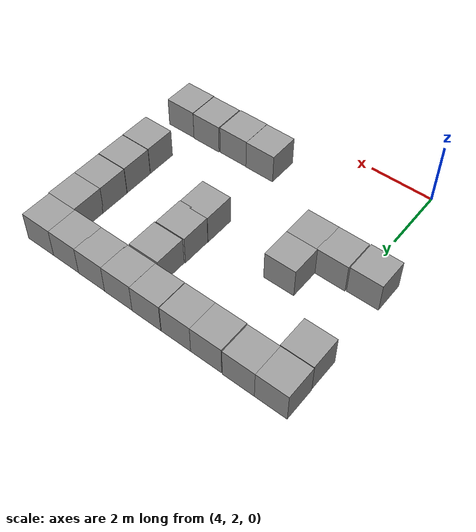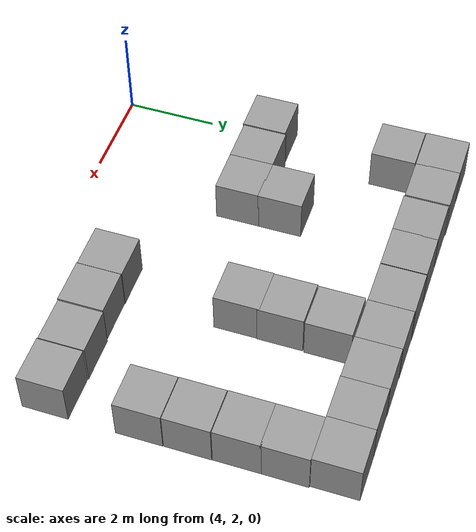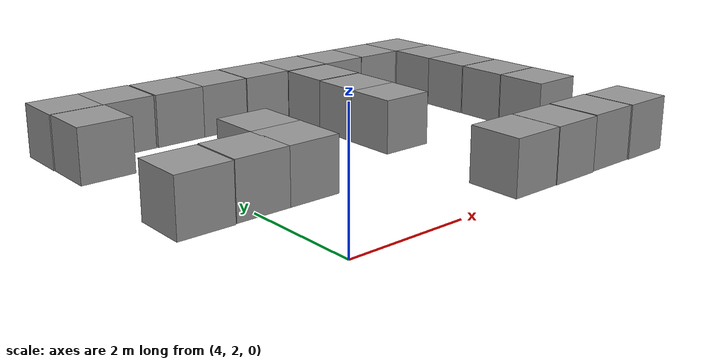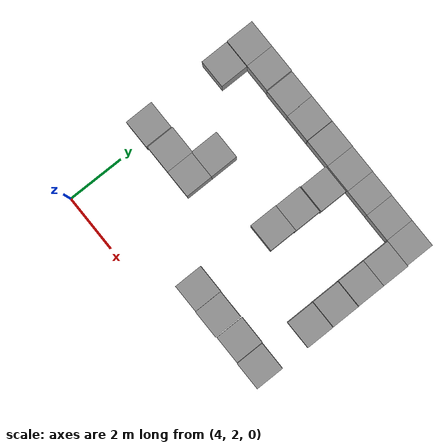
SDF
<sdf version="1.7">
 <model name="maze2.1">
  <link name="link_1">
   <inertial>
    <mass>1</mass>
    <inertia>
     <ixx>0.166667</ixx>
     <ixy>0</ixy>
     <ixz>0</ixz>
     <iyy>0.166667</iyy>
     <iyz>0</iyz>
     <izz>0.166667</izz>
    </inertia>
   </inertial>
   <pose>9.73191 9.35731 0 0 -0 0</pose>
   <visual name="visual">
    <geometry><box><size>1 1 1</size></box></geometry>
    <material>
     <lighting>1</lighting>
     <script><uri>file://media/materials/scripts/gazebo.material</uri><name>Gazebo/Grey</name></script>
     <shader type="pixel"><normal_map>__default__</normal_map></shader>
     <ambient>0.3 0.3 0.3 1</ambient>
     <diffuse>0.7 0.7 0.7 1</diffuse>
     <specular>0.01 0.01 0.01 1</specular>
     <emissive>0 0 0 1</emissive>
    </material>
   </visual>
   <collision name="collision">
    <geometry><box><size>1 1 1</size></box></geometry>
    <surface>
     <friction>
      <ode><mu>1</mu><mu2>1</mu2><fdir1>0 0 0</fdir1><slip1>0</slip1><slip2>0</slip2></ode>
      <torsional>
       <coefficient>1</coefficient>
       <patch_radius>0</patch_radius>
       <surface_radius>0</surface_radius>
       <use_patch_radius>1</use_patch_radius>
       <ode><slip>0</slip></ode>
      </torsional>
     </friction>
     <bounce><restitution_coefficient>0</restitution_coefficient><threshold>1e+06</threshold></bounce>
     <contact>
      <collide_without_contact>0</collide_without_contact>
      <collide_without_contact_bitmask>1</collide_without_contact_bitmask>
      <collide_bitmask>1</collide_bitmask>
      <ode>
       <soft_cfm>0</soft_cfm>
       <soft_erp>0.2</soft_erp>
       <kp>1e+13</kp>
       <kd>1</kd>
       <max_vel>0.01</max_vel>
       <min_depth>0</min_depth>
      </ode>
      <bullet>
       <split_impulse>1</split_impulse>
       <split_impulse_penetration_threshold>-0.01</split_impulse_penetration_threshold>
       <soft_cfm>0</soft_cfm>
       <soft_erp>0.2</soft_erp>
       <kp>1e+13</kp>
       <kd>1</kd>
      </bullet>
     </contact>
    </surface>
   </collision>
  </link>
  <link name="link_0">
   <inertial>
    <mass>1</mass>
    <inertia>
     <ixx>0.166667</ixx>
     <ixy>0</ixy>
     <ixz>0</ixz>
     <iyy>0.166667</iyy>
     <iyz>0</iyz>
     <izz>0.166667</izz>
    </inertia>
   </inertial>
   <pose>10.704 9.35209 0 0 -0 0</pose>
   <visual name="visual">
    <geometry><box><size>1 1 1</size></box></geometry>
    <material>
     <lighting>1</lighting>
     <script><uri>file://media/materials/scripts/gazebo.material</uri><name>Gazebo/Grey</name></script>
     <shader type="pixel"/>
    </material>
   </visual>
   <collision name="collision">
    <geometry><box><size>1 1 1</size></box></geometry>
    <surface>
     <friction>
      <ode><mu>1</mu><mu2>1</mu2><fdir1>0 0 0</fdir1><slip1>0</slip1><slip2>0</slip2></ode>
      <torsional>
       <coefficient>1</coefficient>
       <patch_radius>0</patch_radius>
       <surface_radius>0</surface_radius>
       <use_patch_radius>1</use_patch_radius>
       <ode><slip>0</slip></ode>
      </torsional>
     </friction>
     <bounce><restitution_coefficient>0</restitution_coefficient><threshold>1e+06</threshold></bounce>
     <contact>
      <collide_without_contact>0</collide_without_contact>
      <collide_without_contact_bitmask>1</collide_without_contact_bitmask>
      <collide_bitmask>1</collide_bitmask>
      <ode>
       <soft_cfm>0</soft_cfm>
       <soft_erp>0.2</soft_erp>
       <kp>1e+13</kp>
       <kd>1</kd>
       <max_vel>0.01</max_vel>
       <min_depth>0</min_depth>
      </ode>
      <bullet>
       <split_impulse>1</split_impulse>
       <split_impulse_penetration_threshold>-0.01</split_impulse_penetration_threshold>
       <soft_cfm>0</soft_cfm>
       <soft_erp>0.2</soft_erp>
       <kp>1e+13</kp>
       <kd>1</kd>
      </bullet>
     </contact>
    </surface>
   </collision>
  </link>
  <link name="link_1_0">
   <inertial>
    <mass>1</mass>
    <inertia>
     <ixx>0.166667</ixx>
     <ixy>0</ixy>
     <ixz>0</ixz>
     <iyy>0.166667</iyy>
     <iyz>0</iyz>
     <izz>0.166667</izz>
    </inertia>
   </inertial>
   <pose>11.7027 9.35209 0 0 -0 0</pose>
   <visual name="visual">
    <geometry><box><size>1 1 1</size></box></geometry>
    <material>
     <lighting>1</lighting>
     <script><uri>file://media/materials/scripts/gazebo.material</uri><name>Gazebo/Grey</name></script>
     <shader type="pixel"/>
    </material>
   </visual>
   <collision name="collision">
    <geometry><box><size>1 1 1</size></box></geometry>
    <surface>
     <friction>
      <ode><mu>1</mu><mu2>1</mu2><fdir1>0 0 0</fdir1><slip1>0</slip1><slip2>0</slip2></ode>
      <torsional>
       <coefficient>1</coefficient>
       <patch_radius>0</patch_radius>
       <surface_radius>0</surface_radius>
       <use_patch_radius>1</use_patch_radius>
       <ode><slip>0</slip></ode>
      </torsional>
     </friction>
     <bounce><restitution_coefficient>0</restitution_coefficient><threshold>1e+06</threshold></bounce>
     <contact>
      <collide_without_contact>0</collide_without_contact>
      <collide_without_contact_bitmask>1</collide_without_contact_bitmask>
      <collide_bitmask>1</collide_bitmask>
      <ode>
       <soft_cfm>0</soft_cfm>
       <soft_erp>0.2</soft_erp>
       <kp>1e+13</kp>
       <kd>1</kd>
       <max_vel>0.01</max_vel>
       <min_depth>0</min_depth>
      </ode>
      <bullet>
       <split_impulse>1</split_impulse>
       <split_impulse_penetration_threshold>-0.01</split_impulse_penetration_threshold>
       <soft_cfm>0</soft_cfm>
       <soft_erp>0.2</soft_erp>
       <kp>1e+13</kp>
       <kd>1</kd>
      </bullet>
     </contact>
    </surface>
   </collision>
  </link>
  <link name="link_1_clone">
   <inertial>
    <mass>1</mass>
    <inertia>
     <ixx>0.166667</ixx>
     <ixy>0</ixy>
     <ixz>0</ixz>
     <iyy>0.166667</iyy>
     <iyz>0</iyz>
     <izz>0.166667</izz>
    </inertia>
   </inertial>
   <pose>8.75414 9.36341 0 0 -0 0</pose>
   <visual name="visual">
    <geometry><box><size>1 1 1</size></box></geometry>
    <material>
     <lighting>1</lighting>
     <script><uri>file://media/materials/scripts/gazebo.material</uri><name>Gazebo/Grey</name></script>
     <shader type="pixel"><normal_map>__default__</normal_map></shader>
     <ambient>0.3 0.3 0.3 1</ambient>
     <diffuse>0.7 0.7 0.7 1</diffuse>
     <specular>0.01 0.01 0.01 1</specular>
     <emissive>0 0 0 1</emissive>
    </material>
   </visual>
   <collision name="collision">
    <geometry><box><size>1 1 1</size></box></geometry>
    <surface>
     <friction>
      <ode><mu>1</mu><mu2>1</mu2><fdir1>0 0 0</fdir1><slip1>0</slip1><slip2>0</slip2></ode>
      <torsional>
       <coefficient>1</coefficient>
       <patch_radius>0</patch_radius>
       <surface_radius>0</surface_radius>
       <use_patch_radius>1</use_patch_radius>
       <ode><slip>0</slip></ode>
      </torsional>
     </friction>
     <bounce><restitution_coefficient>0</restitution_coefficient><threshold>1e+06</threshold></bounce>
     <contact>
      <collide_without_contact>0</collide_without_contact>
      <collide_without_contact_bitmask>1</collide_without_contact_bitmask>
      <collide_bitmask>1</collide_bitmask>
      <ode>
       <soft_cfm>0</soft_cfm>
       <soft_erp>0.2</soft_erp>
       <kp>1e+13</kp>
       <kd>1</kd>
       <max_vel>0.01</max_vel>
       <min_depth>0</min_depth>
      </ode>
      <bullet>
       <split_impulse>1</split_impulse>
       <split_impulse_penetration_threshold>-0.01</split_impulse_penetration_threshold>
       <soft_cfm>0</soft_cfm>
       <soft_erp>0.2</soft_erp>
       <kp>1e+13</kp>
       <kd>1</kd>
      </bullet>
     </contact>
    </surface>
   </collision>
  </link>
  <link name="link_1_clone_0">
   <inertial>
    <mass>1</mass>
    <inertia>
     <ixx>0.166667</ixx>
     <ixy>0</ixy>
     <ixz>0</ixz>
     <iyy>0.166667</iyy>
     <iyz>0</iyz>
     <izz>0.166667</izz>
    </inertia>
   </inertial>
   <pose>7.75382 9.3701 0 0 -0 0</pose>
   <visual name="visual">
    <geometry><box><size>1 1 1</size></box></geometry>
    <material>
     <lighting>1</lighting>
     <script><uri>file://media/materials/scripts/gazebo.material</uri><name>Gazebo/Grey</name></script>
     <shader type="pixel"><normal_map>__default__</normal_map></shader>
     <ambient>0.3 0.3 0.3 1</ambient>
     <diffuse>0.7 0.7 0.7 1</diffuse>
     <specular>0.01 0.01 0.01 1</specular>
     <emissive>0 0 0 1</emissive>
    </material>
   </visual>
   <collision name="collision">
    <geometry><box><size>1 1 1</size></box></geometry>
    <surface>
     <friction>
      <ode><mu>1</mu><mu2>1</mu2><fdir1>0 0 0</fdir1><slip1>0</slip1><slip2>0</slip2></ode>
      <torsional>
       <coefficient>1</coefficient>
       <patch_radius>0</patch_radius>
       <surface_radius>0</surface_radius>
       <use_patch_radius>1</use_patch_radius>
       <ode><slip>0</slip></ode>
      </torsional>
     </friction>
     <bounce><restitution_coefficient>0</restitution_coefficient><threshold>1e+06</threshold></bounce>
     <contact>
      <collide_without_contact>0</collide_without_contact>
      <collide_without_contact_bitmask>1</collide_without_contact_bitmask>
      <collide_bitmask>1</collide_bitmask>
      <ode>
       <soft_cfm>0</soft_cfm>
       <soft_erp>0.2</soft_erp>
       <kp>1e+13</kp>
       <kd>1</kd>
       <max_vel>0.01</max_vel>
       <min_depth>0</min_depth>
      </ode>
      <bullet>
       <split_impulse>1</split_impulse>
       <split_impulse_penetration_threshold>-0.01</split_impulse_penetration_threshold>
       <soft_cfm>0</soft_cfm>
       <soft_erp>0.2</soft_erp>
       <kp>1e+13</kp>
       <kd>1</kd>
      </bullet>
     </contact>
    </surface>
   </collision>
  </link>
  <link name="link_1_clone_1">
   <inertial>
    <mass>1</mass>
    <inertia>
     <ixx>0.166667</ixx>
     <ixy>0</ixy>
     <ixz>0</ixz>
     <iyy>0.166667</iyy>
     <iyz>0</iyz>
     <izz>0.166667</izz>
    </inertia>
   </inertial>
   <pose>6.73851 9.3701 0 0 -0 0</pose>
   <visual name="visual">
    <geometry><box><size>1 1 1</size></box></geometry>
    <material>
     <lighting>1</lighting>
     <script><uri>file://media/materials/scripts/gazebo.material</uri><name>Gazebo/Grey</name></script>
     <shader type="pixel"><normal_map>__default__</normal_map></shader>
     <ambient>0.3 0.3 0.3 1</ambient>
     <diffuse>0.7 0.7 0.7 1</diffuse>
     <specular>0.01 0.01 0.01 1</specular>
     <emissive>0 0 0 1</emissive>
    </material>
   </visual>
   <collision name="collision">
    <geometry><box><size>1 1 1</size></box></geometry>
    <surface>
     <friction>
      <ode><mu>1</mu><mu2>1</mu2><fdir1>0 0 0</fdir1><slip1>0</slip1><slip2>0</slip2></ode>
      <torsional>
       <coefficient>1</coefficient>
       <patch_radius>0</patch_radius>
       <surface_radius>0</surface_radius>
       <use_patch_radius>1</use_patch_radius>
       <ode><slip>0</slip></ode>
      </torsional>
     </friction>
     <bounce><restitution_coefficient>0</restitution_coefficient><threshold>1e+06</threshold></bounce>
     <contact>
      <collide_without_contact>0</collide_without_contact>
      <collide_without_contact_bitmask>1</collide_without_contact_bitmask>
      <collide_bitmask>1</collide_bitmask>
      <ode>
       <soft_cfm>0</soft_cfm>
       <soft_erp>0.2</soft_erp>
       <kp>1e+13</kp>
       <kd>1</kd>
       <max_vel>0.01</max_vel>
       <min_depth>0</min_depth>
      </ode>
      <bullet>
       <split_impulse>1</split_impulse>
       <split_impulse_penetration_threshold>-0.01</split_impulse_penetration_threshold>
       <soft_cfm>0</soft_cfm>
       <soft_erp>0.2</soft_erp>
       <kp>1e+13</kp>
       <kd>1</kd>
      </bullet>
     </contact>
    </surface>
   </collision>
  </link>
  <link name="link_1_clone_2">
   <inertial>
    <mass>1</mass>
    <inertia>
     <ixx>0.166667</ixx>
     <ixy>0</ixy>
     <ixz>0</ixz>
     <iyy>0.166667</iyy>
     <iyz>0</iyz>
     <izz>0.166667</izz>
    </inertia>
   </inertial>
   <pose>5.75382 9.3701 0 0 -0 0</pose>
   <visual name="visual">
    <geometry><box><size>1 1 1</size></box></geometry>
    <material>
     <lighting>1</lighting>
     <script><uri>file://media/materials/scripts/gazebo.material</uri><name>Gazebo/Grey</name></script>
     <shader type="pixel"><normal_map>__default__</normal_map></shader>
     <ambient>0.3 0.3 0.3 1</ambient>
     <diffuse>0.7 0.7 0.7 1</diffuse>
     <specular>0.01 0.01 0.01 1</specular>
     <emissive>0 0 0 1</emissive>
    </material>
   </visual>
   <collision name="collision">
    <geometry><box><size>1 1 1</size></box></geometry>
    <surface>
     <friction>
      <ode><mu>1</mu><mu2>1</mu2><fdir1>0 0 0</fdir1><slip1>0</slip1><slip2>0</slip2></ode>
      <torsional>
       <coefficient>1</coefficient>
       <patch_radius>0</patch_radius>
       <surface_radius>0</surface_radius>
       <use_patch_radius>1</use_patch_radius>
       <ode><slip>0</slip></ode>
      </torsional>
     </friction>
     <bounce><restitution_coefficient>0</restitution_coefficient><threshold>1e+06</threshold></bounce>
     <contact>
      <collide_without_contact>0</collide_without_contact>
      <collide_without_contact_bitmask>1</collide_without_contact_bitmask>
      <collide_bitmask>1</collide_bitmask>
      <ode>
       <soft_cfm>0</soft_cfm>
       <soft_erp>0.2</soft_erp>
       <kp>1e+13</kp>
       <kd>1</kd>
       <max_vel>0.01</max_vel>
       <min_depth>0</min_depth>
      </ode>
      <bullet>
       <split_impulse>1</split_impulse>
       <split_impulse_penetration_threshold>-0.01</split_impulse_penetration_threshold>
       <soft_cfm>0</soft_cfm>
       <soft_erp>0.2</soft_erp>
       <kp>1e+13</kp>
       <kd>1</kd>
      </bullet>
     </contact>
    </surface>
   </collision>
  </link>
  <link name="link_1_clone_3">
   <inertial>
    <mass>1</mass>
    <inertia>
     <ixx>0.166667</ixx>
     <ixy>0</ixy>
     <ixz>0</ixz>
     <iyy>0.166667</iyy>
     <iyz>0</iyz>
     <izz>0.166667</izz>
    </inertia>
   </inertial>
   <pose>4.72313 9.38541 0 0 -0 0</pose>
   <visual name="visual">
    <geometry><box><size>1 1 1</size></box></geometry>
    <material>
     <lighting>1</lighting>
     <script><uri>file://media/materials/scripts/gazebo.material</uri><name>Gazebo/Grey</name></script>
     <shader type="pixel"><normal_map>__default__</normal_map></shader>
     <ambient>0.3 0.3 0.3 1</ambient>
     <diffuse>0.7 0.7 0.7 1</diffuse>
     <specular>0.01 0.01 0.01 1</specular>
     <emissive>0 0 0 1</emissive>
    </material>
   </visual>
   <collision name="collision">
    <geometry><box><size>1 1 1</size></box></geometry>
    <surface>
     <friction>
      <ode><mu>1</mu><mu2>1</mu2><fdir1>0 0 0</fdir1><slip1>0</slip1><slip2>0</slip2></ode>
      <torsional>
       <coefficient>1</coefficient>
       <patch_radius>0</patch_radius>
       <surface_radius>0</surface_radius>
       <use_patch_radius>1</use_patch_radius>
       <ode><slip>0</slip></ode>
      </torsional>
     </friction>
     <bounce><restitution_coefficient>0</restitution_coefficient><threshold>1e+06</threshold></bounce>
     <contact>
      <collide_without_contact>0</collide_without_contact>
      <collide_without_contact_bitmask>1</collide_without_contact_bitmask>
      <collide_bitmask>1</collide_bitmask>
      <ode>
       <soft_cfm>0</soft_cfm>
       <soft_erp>0.2</soft_erp>
       <kp>1e+13</kp>
       <kd>1</kd>
       <max_vel>0.01</max_vel>
       <min_depth>0</min_depth>
      </ode>
      <bullet>
       <split_impulse>1</split_impulse>
       <split_impulse_penetration_threshold>-0.01</split_impulse_penetration_threshold>
       <soft_cfm>0</soft_cfm>
       <soft_erp>0.2</soft_erp>
       <kp>1e+13</kp>
       <kd>1</kd>
      </bullet>
     </contact>
    </surface>
   </collision>
  </link>
  <link name="link_1_clone_4">
   <inertial>
    <mass>1</mass>
    <inertia>
     <ixx>0.166667</ixx>
     <ixy>0</ixy>
     <ixz>0</ixz>
     <iyy>0.166667</iyy>
     <iyz>0</iyz>
     <izz>0.166667</izz>
    </inertia>
   </inertial>
   <pose>3.7384 9.38526 0 0 -0 0</pose>
   <visual name="visual">
    <geometry><box><size>1 1 1</size></box></geometry>
    <material>
     <lighting>1</lighting>
     <script><uri>file://media/materials/scripts/gazebo.material</uri><name>Gazebo/Grey</name></script>
     <shader type="pixel"><normal_map>__default__</normal_map></shader>
     <ambient>0.3 0.3 0.3 1</ambient>
     <diffuse>0.7 0.7 0.7 1</diffuse>
     <specular>0.01 0.01 0.01 1</specular>
     <emissive>0 0 0 1</emissive>
    </material>
   </visual>
   <collision name="collision">
    <geometry><box><size>1 1 1</size></box></geometry>
    <surface>
     <friction>
      <ode><mu>1</mu><mu2>1</mu2><fdir1>0 0 0</fdir1><slip1>0</slip1><slip2>0</slip2></ode>
      <torsional>
       <coefficient>1</coefficient>
       <patch_radius>0</patch_radius>
       <surface_radius>0</surface_radius>
       <use_patch_radius>1</use_patch_radius>
       <ode><slip>0</slip></ode>
      </torsional>
     </friction>
     <bounce><restitution_coefficient>0</restitution_coefficient><threshold>1e+06</threshold></bounce>
     <contact>
      <collide_without_contact>0</collide_without_contact>
      <collide_without_contact_bitmask>1</collide_without_contact_bitmask>
      <collide_bitmask>1</collide_bitmask>
      <ode>
       <soft_cfm>0</soft_cfm>
       <soft_erp>0.2</soft_erp>
       <kp>1e+13</kp>
       <kd>1</kd>
       <max_vel>0.01</max_vel>
       <min_depth>0</min_depth>
      </ode>
      <bullet>
       <split_impulse>1</split_impulse>
       <split_impulse_penetration_threshold>-0.01</split_impulse_penetration_threshold>
       <soft_cfm>0</soft_cfm>
       <soft_erp>0.2</soft_erp>
       <kp>1e+13</kp>
       <kd>1</kd>
      </bullet>
     </contact>
    </surface>
   </collision>
  </link>
  <link name="link_1_clone_69">
   <inertial>
    <mass>1</mass>
    <inertia>
     <ixx>0.166667</ixx>
     <ixy>0</ixy>
     <ixz>0</ixz>
     <iyy>0.166667</iyy>
     <iyz>0</iyz>
     <izz>0.166667</izz>
    </inertia>
   </inertial>
   <pose>11.7485 3.35224 0 0 -0 0</pose>
   <visual name="visual">
    <geometry><box><size>1 1 1</size></box></geometry>
    <material>
     <lighting>1</lighting>
     <script><uri>file://media/materials/scripts/gazebo.material</uri><name>Gazebo/Grey</name></script>
     <shader type="pixel"><normal_map>__default__</normal_map></shader>
     <ambient>0.3 0.3 0.3 1</ambient>
     <diffuse>0.7 0.7 0.7 1</diffuse>
     <specular>0.01 0.01 0.01 1</specular>
     <emissive>0 0 0 1</emissive>
    </material>
   </visual>
   <collision name="collision">
    <geometry><box><size>1 1 1</size></box></geometry>
    <surface>
     <friction>
      <ode><mu>1</mu><mu2>1</mu2><fdir1>0 0 0</fdir1><slip1>0</slip1><slip2>0</slip2></ode>
      <torsional>
       <coefficient>1</coefficient>
       <patch_radius>0</patch_radius>
       <surface_radius>0</surface_radius>
       <use_patch_radius>1</use_patch_radius>
       <ode><slip>0</slip></ode>
      </torsional>
     </friction>
     <bounce><restitution_coefficient>0</restitution_coefficient><threshold>1e+06</threshold></bounce>
     <contact>
      <collide_without_contact>0</collide_without_contact>
      <collide_without_contact_bitmask>1</collide_without_contact_bitmask>
      <collide_bitmask>1</collide_bitmask>
      <ode>
       <soft_cfm>0</soft_cfm>
       <soft_erp>0.2</soft_erp>
       <kp>1e+13</kp>
       <kd>1</kd>
       <max_vel>0.01</max_vel>
       <min_depth>0</min_depth>
      </ode>
      <bullet>
       <split_impulse>1</split_impulse>
       <split_impulse_penetration_threshold>-0.01</split_impulse_penetration_threshold>
       <soft_cfm>0</soft_cfm>
       <soft_erp>0.2</soft_erp>
       <kp>1e+13</kp>
       <kd>1</kd>
      </bullet>
     </contact>
    </surface>
   </collision>
  </link>
  <link name="link_1_clone_70">
   <inertial>
    <mass>1</mass>
    <inertia>
     <ixx>0.166667</ixx>
     <ixy>0</ixy>
     <ixz>0</ixz>
     <iyy>0.166667</iyy>
     <iyz>0</iyz>
     <izz>0.166667</izz>
    </inertia>
   </inertial>
   <pose>11.7456 5.36013 0 0 -0 0</pose>
   <visual name="visual">
    <geometry><box><size>1 1 1</size></box></geometry>
    <material>
     <lighting>1</lighting>
     <script><uri>file://media/materials/scripts/gazebo.material</uri><name>Gazebo/Grey</name></script>
     <shader type="pixel"><normal_map>__default__</normal_map></shader>
     <ambient>0.3 0.3 0.3 1</ambient>
     <diffuse>0.7 0.7 0.7 1</diffuse>
     <specular>0.01 0.01 0.01 1</specular>
     <emissive>0 0 0 1</emissive>
    </material>
   </visual>
   <collision name="collision">
    <geometry><box><size>1 1 1</size></box></geometry>
    <surface>
     <friction>
      <ode><mu>1</mu><mu2>1</mu2><fdir1>0 0 0</fdir1><slip1>0</slip1><slip2>0</slip2></ode>
      <torsional>
       <coefficient>1</coefficient>
       <patch_radius>0</patch_radius>
       <surface_radius>0</surface_radius>
       <use_patch_radius>1</use_patch_radius>
       <ode><slip>0</slip></ode>
      </torsional>
     </friction>
     <bounce><restitution_coefficient>0</restitution_coefficient><threshold>1e+06</threshold></bounce>
     <contact>
      <collide_without_contact>0</collide_without_contact>
      <collide_without_contact_bitmask>1</collide_without_contact_bitmask>
      <collide_bitmask>1</collide_bitmask>
      <ode>
       <soft_cfm>0</soft_cfm>
       <soft_erp>0.2</soft_erp>
       <kp>1e+13</kp>
       <kd>1</kd>
       <max_vel>0.01</max_vel>
       <min_depth>0</min_depth>
      </ode>
      <bullet>
       <split_impulse>1</split_impulse>
       <split_impulse_penetration_threshold>-0.01</split_impulse_penetration_threshold>
       <soft_cfm>0</soft_cfm>
       <soft_erp>0.2</soft_erp>
       <kp>1e+13</kp>
       <kd>1</kd>
      </bullet>
     </contact>
    </surface>
   </collision>
  </link>
  <link name="link_1_clone_71">
   <inertial>
    <mass>1</mass>
    <inertia>
     <ixx>0.166667</ixx>
     <ixy>0</ixy>
     <ixz>0</ixz>
     <iyy>0.166667</iyy>
     <iyz>0</iyz>
     <izz>0.166667</izz>
    </inertia>
   </inertial>
   <pose>11.7406 6.37202 0 0 -0 0</pose>
   <visual name="visual">
    <geometry><box><size>1 1 1</size></box></geometry>
    <material>
     <lighting>1</lighting>
     <script><uri>file://media/materials/scripts/gazebo.material</uri><name>Gazebo/Grey</name></script>
     <shader type="pixel"><normal_map>__default__</normal_map></shader>
     <ambient>0.3 0.3 0.3 1</ambient>
     <diffuse>0.7 0.7 0.7 1</diffuse>
     <specular>0.01 0.01 0.01 1</specular>
     <emissive>0 0 0 1</emissive>
    </material>
   </visual>
   <collision name="collision">
    <geometry><box><size>1 1 1</size></box></geometry>
    <surface>
     <friction>
      <ode><mu>1</mu><mu2>1</mu2><fdir1>0 0 0</fdir1><slip1>0</slip1><slip2>0</slip2></ode>
      <torsional>
       <coefficient>1</coefficient>
       <patch_radius>0</patch_radius>
       <surface_radius>0</surface_radius>
       <use_patch_radius>1</use_patch_radius>
       <ode><slip>0</slip></ode>
      </torsional>
     </friction>
     <bounce><restitution_coefficient>0</restitution_coefficient><threshold>1e+06</threshold></bounce>
     <contact>
      <collide_without_contact>0</collide_without_contact>
      <collide_without_contact_bitmask>1</collide_without_contact_bitmask>
      <collide_bitmask>1</collide_bitmask>
      <ode>
       <soft_cfm>0</soft_cfm>
       <soft_erp>0.2</soft_erp>
       <kp>1e+13</kp>
       <kd>1</kd>
       <max_vel>0.01</max_vel>
       <min_depth>0</min_depth>
      </ode>
      <bullet>
       <split_impulse>1</split_impulse>
       <split_impulse_penetration_threshold>-0.01</split_impulse_penetration_threshold>
       <soft_cfm>0</soft_cfm>
       <soft_erp>0.2</soft_erp>
       <kp>1e+13</kp>
       <kd>1</kd>
      </bullet>
     </contact>
    </surface>
   </collision>
  </link>
  <link name="link_1_clone_72">
   <inertial>
    <mass>1</mass>
    <inertia>
     <ixx>0.166667</ixx>
     <ixy>0</ixy>
     <ixz>0</ixz>
     <iyy>0.166667</iyy>
     <iyz>0</iyz>
     <izz>0.166667</izz>
    </inertia>
   </inertial>
   <pose>8.72877 8.32417 0 0 -0 0</pose>
   <visual name="visual">
    <geometry><box><size>1 1 1</size></box></geometry>
    <material>
     <lighting>1</lighting>
     <script><uri>file://media/materials/scripts/gazebo.material</uri><name>Gazebo/Grey</name></script>
     <shader type="pixel"><normal_map>__default__</normal_map></shader>
     <ambient>0.3 0.3 0.3 1</ambient>
     <diffuse>0.7 0.7 0.7 1</diffuse>
     <specular>0.01 0.01 0.01 1</specular>
     <emissive>0 0 0 1</emissive>
    </material>
   </visual>
   <collision name="collision">
    <geometry><box><size>1 1 1</size></box></geometry>
    <surface>
     <friction>
      <ode><mu>1</mu><mu2>1</mu2><fdir1>0 0 0</fdir1><slip1>0</slip1><slip2>0</slip2></ode>
      <torsional>
       <coefficient>1</coefficient>
       <patch_radius>0</patch_radius>
       <surface_radius>0</surface_radius>
       <use_patch_radius>1</use_patch_radius>
       <ode><slip>0</slip></ode>
      </torsional>
     </friction>
     <bounce><restitution_coefficient>0</restitution_coefficient><threshold>1e+06</threshold></bounce>
     <contact>
      <collide_without_contact>0</collide_without_contact>
      <collide_without_contact_bitmask>1</collide_without_contact_bitmask>
      <collide_bitmask>1</collide_bitmask>
      <ode>
       <soft_cfm>0</soft_cfm>
       <soft_erp>0.2</soft_erp>
       <kp>1e+13</kp>
       <kd>1</kd>
       <max_vel>0.01</max_vel>
       <min_depth>0</min_depth>
      </ode>
      <bullet>
       <split_impulse>1</split_impulse>
       <split_impulse_penetration_threshold>-0.01</split_impulse_penetration_threshold>
       <soft_cfm>0</soft_cfm>
       <soft_erp>0.2</soft_erp>
       <kp>1e+13</kp>
       <kd>1</kd>
      </bullet>
     </contact>
    </surface>
   </collision>
  </link>
  <link name="link_1_clone_73">
   <inertial>
    <mass>1</mass>
    <inertia>
     <ixx>0.166667</ixx>
     <ixy>0</ixy>
     <ixz>0</ixz>
     <iyy>0.166667</iyy>
     <iyz>0</iyz>
     <izz>0.166667</izz>
    </inertia>
   </inertial>
   <pose>9.70371 3.34592 0 0 -0 0</pose>
   <visual name="visual">
    <geometry><box><size>1 1 1</size></box></geometry>
    <material>
     <lighting>1</lighting>
     <script><uri>file://media/materials/scripts/gazebo.material</uri><name>Gazebo/Grey</name></script>
     <shader type="pixel"><normal_map>__default__</normal_map></shader>
     <ambient>0.3 0.3 0.3 1</ambient>
     <diffuse>0.7 0.7 0.7 1</diffuse>
     <specular>0.01 0.01 0.01 1</specular>
     <emissive>0 0 0 1</emissive>
    </material>
   </visual>
   <collision name="collision">
    <geometry><box><size>1 1 1</size></box></geometry>
    <surface>
     <friction>
      <ode><mu>1</mu><mu2>1</mu2><fdir1>0 0 0</fdir1><slip1>0</slip1><slip2>0</slip2></ode>
      <torsional>
       <coefficient>1</coefficient>
       <patch_radius>0</patch_radius>
       <surface_radius>0</surface_radius>
       <use_patch_radius>1</use_patch_radius>
       <ode><slip>0</slip></ode>
      </torsional>
     </friction>
     <bounce><restitution_coefficient>0</restitution_coefficient><threshold>1e+06</threshold></bounce>
     <contact>
      <collide_without_contact>0</collide_without_contact>
      <collide_without_contact_bitmask>1</collide_without_contact_bitmask>
      <collide_bitmask>1</collide_bitmask>
      <ode>
       <soft_cfm>0</soft_cfm>
       <soft_erp>0.2</soft_erp>
       <kp>1e+13</kp>
       <kd>1</kd>
       <max_vel>0.01</max_vel>
       <min_depth>0</min_depth>
      </ode>
      <bullet>
       <split_impulse>1</split_impulse>
       <split_impulse_penetration_threshold>-0.01</split_impulse_penetration_threshold>
       <soft_cfm>0</soft_cfm>
       <soft_erp>0.2</soft_erp>
       <kp>1e+13</kp>
       <kd>1</kd>
      </bullet>
     </contact>
    </surface>
   </collision>
  </link>
  <link name="link_1_clone_74">
   <inertial>
    <mass>1</mass>
    <inertia>
     <ixx>0.166667</ixx>
     <ixy>0</ixy>
     <ixz>0</ixz>
     <iyy>0.166667</iyy>
     <iyz>0</iyz>
     <izz>0.166667</izz>
    </inertia>
   </inertial>
   <pose>8.70499 7.29717 0 0 -0 0</pose>
   <visual name="visual">
    <geometry><box><size>1 1 1</size></box></geometry>
    <material>
     <lighting>1</lighting>
     <script><uri>file://media/materials/scripts/gazebo.material</uri><name>Gazebo/Grey</name></script>
     <shader type="pixel"><normal_map>__default__</normal_map></shader>
     <ambient>0.3 0.3 0.3 1</ambient>
     <diffuse>0.7 0.7 0.7 1</diffuse>
     <specular>0.01 0.01 0.01 1</specular>
     <emissive>0 0 0 1</emissive>
    </material>
   </visual>
   <collision name="collision">
    <geometry><box><size>1 1 1</size></box></geometry>
    <surface>
     <friction>
      <ode><mu>1</mu><mu2>1</mu2><fdir1>0 0 0</fdir1><slip1>0</slip1><slip2>0</slip2></ode>
      <torsional>
       <coefficient>1</coefficient>
       <patch_radius>0</patch_radius>
       <surface_radius>0</surface_radius>
       <use_patch_radius>1</use_patch_radius>
       <ode><slip>0</slip></ode>
      </torsional>
     </friction>
     <bounce><restitution_coefficient>0</restitution_coefficient><threshold>1e+06</threshold></bounce>
     <contact>
      <collide_without_contact>0</collide_without_contact>
      <collide_without_contact_bitmask>1</collide_without_contact_bitmask>
      <collide_bitmask>1</collide_bitmask>
      <ode>
       <soft_cfm>0</soft_cfm>
       <soft_erp>0.2</soft_erp>
       <kp>1e+13</kp>
       <kd>1</kd>
       <max_vel>0.01</max_vel>
       <min_depth>0</min_depth>
      </ode>
      <bullet>
       <split_impulse>1</split_impulse>
       <split_impulse_penetration_threshold>-0.01</split_impulse_penetration_threshold>
       <soft_cfm>0</soft_cfm>
       <soft_erp>0.2</soft_erp>
       <kp>1e+13</kp>
       <kd>1</kd>
      </bullet>
     </contact>
    </surface>
   </collision>
  </link>
  <link name="link_1_clone_75">
   <inertial>
    <mass>1</mass>
    <inertia>
     <ixx>0.166667</ixx>
     <ixy>0</ixy>
     <ixz>0</ixz>
     <iyy>0.166667</iyy>
     <iyz>0</iyz>
     <izz>0.166667</izz>
    </inertia>
   </inertial>
   <pose>10.7324 3.36878 0 0 -0 0</pose>
   <visual name="visual">
    <geometry><box><size>1 1 1</size></box></geometry>
    <material>
     <lighting>1</lighting>
     <script><uri>file://media/materials/scripts/gazebo.material</uri><name>Gazebo/Grey</name></script>
     <shader type="pixel"><normal_map>__default__</normal_map></shader>
     <ambient>0.3 0.3 0.3 1</ambient>
     <diffuse>0.7 0.7 0.7 1</diffuse>
     <specular>0.01 0.01 0.01 1</specular>
     <emissive>0 0 0 1</emissive>
    </material>
   </visual>
   <collision name="collision">
    <geometry><box><size>1 1 1</size></box></geometry>
    <surface>
     <friction>
      <ode><mu>1</mu><mu2>1</mu2><fdir1>0 0 0</fdir1><slip1>0</slip1><slip2>0</slip2></ode>
      <torsional>
       <coefficient>1</coefficient>
       <patch_radius>0</patch_radius>
       <surface_radius>0</surface_radius>
       <use_patch_radius>1</use_patch_radius>
       <ode><slip>0</slip></ode>
      </torsional>
     </friction>
     <bounce><restitution_coefficient>0</restitution_coefficient><threshold>1e+06</threshold></bounce>
     <contact>
      <collide_without_contact>0</collide_without_contact>
      <collide_without_contact_bitmask>1</collide_without_contact_bitmask>
      <collide_bitmask>1</collide_bitmask>
      <ode>
       <soft_cfm>0</soft_cfm>
       <soft_erp>0.2</soft_erp>
       <kp>1e+13</kp>
       <kd>1</kd>
       <max_vel>0.01</max_vel>
       <min_depth>0</min_depth>
      </ode>
      <bullet>
       <split_impulse>1</split_impulse>
       <split_impulse_penetration_threshold>-0.01</split_impulse_penetration_threshold>
       <soft_cfm>0</soft_cfm>
       <soft_erp>0.2</soft_erp>
       <kp>1e+13</kp>
       <kd>1</kd>
      </bullet>
     </contact>
    </surface>
   </collision>
  </link>
  <link name="link_1_clone_77">
   <inertial>
    <mass>1</mass>
    <inertia>
     <ixx>0.166667</ixx>
     <ixy>0</ixy>
     <ixz>0</ixz>
     <iyy>0.166667</iyy>
     <iyz>0</iyz>
     <izz>0.166667</izz>
    </inertia>
   </inertial>
   <pose>8.70077 3.35602 0 0 -0 0</pose>
   <visual name="visual">
    <geometry><box><size>1 1 1</size></box></geometry>
    <material>
     <lighting>1</lighting>
     <script><uri>file://media/materials/scripts/gazebo.material</uri><name>Gazebo/Grey</name></script>
     <shader type="pixel"><normal_map>__default__</normal_map></shader>
     <ambient>0.3 0.3 0.3 1</ambient>
     <diffuse>0.7 0.7 0.7 1</diffuse>
     <specular>0.01 0.01 0.01 1</specular>
     <emissive>0 0 0 1</emissive>
    </material>
   </visual>
   <collision name="collision">
    <geometry><box><size>1 1 1</size></box></geometry>
    <surface>
     <friction>
      <ode><mu>1</mu><mu2>1</mu2><fdir1>0 0 0</fdir1><slip1>0</slip1><slip2>0</slip2></ode>
      <torsional>
       <coefficient>1</coefficient>
       <patch_radius>0</patch_radius>
       <surface_radius>0</surface_radius>
       <use_patch_radius>1</use_patch_radius>
       <ode><slip>0</slip></ode>
      </torsional>
     </friction>
     <bounce><restitution_coefficient>0</restitution_coefficient><threshold>1e+06</threshold></bounce>
     <contact>
      <collide_without_contact>0</collide_without_contact>
      <collide_without_contact_bitmask>1</collide_without_contact_bitmask>
      <collide_bitmask>1</collide_bitmask>
      <ode>
       <soft_cfm>0</soft_cfm>
       <soft_erp>0.2</soft_erp>
       <kp>1e+13</kp>
       <kd>1</kd>
       <max_vel>0.01</max_vel>
       <min_depth>0</min_depth>
      </ode>
      <bullet>
       <split_impulse>1</split_impulse>
       <split_impulse_penetration_threshold>-0.01</split_impulse_penetration_threshold>
       <soft_cfm>0</soft_cfm>
       <soft_erp>0.2</soft_erp>
       <kp>1e+13</kp>
       <kd>1</kd>
      </bullet>
     </contact>
    </surface>
   </collision>
  </link>
  <link name="link_1_clone_81">
   <inertial>
    <mass>1</mass>
    <inertia>
     <ixx>0.166667</ixx>
     <ixy>0</ixy>
     <ixz>0</ixz>
     <iyy>0.166667</iyy>
     <iyz>0</iyz>
     <izz>0.166667</izz>
    </inertia>
   </inertial>
   <pose>5.75382 6.34973 0 0 -0 0</pose>
   <visual name="visual">
    <geometry><box><size>1 1 1</size></box></geometry>
    <material>
     <lighting>1</lighting>
     <script><uri>file://media/materials/scripts/gazebo.material</uri><name>Gazebo/Grey</name></script>
     <shader type="pixel"><normal_map>__default__</normal_map></shader>
     <ambient>0.3 0.3 0.3 1</ambient>
     <diffuse>0.7 0.7 0.7 1</diffuse>
     <specular>0.01 0.01 0.01 1</specular>
     <emissive>0 0 0 1</emissive>
    </material>
   </visual>
   <collision name="collision">
    <geometry><box><size>1 1 1</size></box></geometry>
    <surface>
     <friction>
      <ode><mu>1</mu><mu2>1</mu2><fdir1>0 0 0</fdir1><slip1>0</slip1><slip2>0</slip2></ode>
      <torsional>
       <coefficient>1</coefficient>
       <patch_radius>0</patch_radius>
       <surface_radius>0</surface_radius>
       <use_patch_radius>1</use_patch_radius>
       <ode><slip>0</slip></ode>
      </torsional>
     </friction>
     <bounce><restitution_coefficient>0</restitution_coefficient><threshold>1e+06</threshold></bounce>
     <contact>
      <collide_without_contact>0</collide_without_contact>
      <collide_without_contact_bitmask>1</collide_without_contact_bitmask>
      <collide_bitmask>1</collide_bitmask>
      <ode>
       <soft_cfm>0</soft_cfm>
       <soft_erp>0.2</soft_erp>
       <kp>1e+13</kp>
       <kd>1</kd>
       <max_vel>0.01</max_vel>
       <min_depth>0</min_depth>
      </ode>
      <bullet>
       <split_impulse>1</split_impulse>
       <split_impulse_penetration_threshold>-0.01</split_impulse_penetration_threshold>
       <soft_cfm>0</soft_cfm>
       <soft_erp>0.2</soft_erp>
       <kp>1e+13</kp>
       <kd>1</kd>
      </bullet>
     </contact>
    </surface>
   </collision>
  </link>
  <link name="link_1_clone_82">
   <inertial>
    <mass>1</mass>
    <inertia>
     <ixx>0.166667</ixx>
     <ixy>0</ixy>
     <ixz>0</ixz>
     <iyy>0.166667</iyy>
     <iyz>0</iyz>
     <izz>0.166667</izz>
    </inertia>
   </inertial>
   <pose>5.75382 5.3782 0 0 -0 0</pose>
   <visual name="visual">
    <geometry><box><size>1 1 1</size></box></geometry>
    <material>
     <lighting>1</lighting>
     <script><uri>file://media/materials/scripts/gazebo.material</uri><name>Gazebo/Grey</name></script>
     <shader type="pixel"><normal_map>__default__</normal_map></shader>
     <ambient>0.3 0.3 0.3 1</ambient>
     <diffuse>0.7 0.7 0.7 1</diffuse>
     <specular>0.01 0.01 0.01 1</specular>
     <emissive>0 0 0 1</emissive>
    </material>
   </visual>
   <collision name="collision">
    <geometry><box><size>1 1 1</size></box></geometry>
    <surface>
     <friction>
      <ode><mu>1</mu><mu2>1</mu2><fdir1>0 0 0</fdir1><slip1>0</slip1><slip2>0</slip2></ode>
      <torsional>
       <coefficient>1</coefficient>
       <patch_radius>0</patch_radius>
       <surface_radius>0</surface_radius>
       <use_patch_radius>1</use_patch_radius>
       <ode><slip>0</slip></ode>
      </torsional>
     </friction>
     <bounce><restitution_coefficient>0</restitution_coefficient><threshold>1e+06</threshold></bounce>
     <contact>
      <collide_without_contact>0</collide_without_contact>
      <collide_without_contact_bitmask>1</collide_without_contact_bitmask>
      <collide_bitmask>1</collide_bitmask>
      <ode>
       <soft_cfm>0</soft_cfm>
       <soft_erp>0.2</soft_erp>
       <kp>1e+13</kp>
       <kd>1</kd>
       <max_vel>0.01</max_vel>
       <min_depth>0</min_depth>
      </ode>
      <bullet>
       <split_impulse>1</split_impulse>
       <split_impulse_penetration_threshold>-0.01</split_impulse_penetration_threshold>
       <soft_cfm>0</soft_cfm>
       <soft_erp>0.2</soft_erp>
       <kp>1e+13</kp>
       <kd>1</kd>
      </bullet>
     </contact>
    </surface>
   </collision>
  </link>
  <link name="link_1_clone_83">
   <inertial>
    <mass>1</mass>
    <inertia>
     <ixx>0.166667</ixx>
     <ixy>0</ixy>
     <ixz>0</ixz>
     <iyy>0.166667</iyy>
     <iyz>0</iyz>
     <izz>0.166667</izz>
    </inertia>
   </inertial>
   <pose>4.78242 5.37806 0 0 -0 0</pose>
   <visual name="visual">
    <geometry><box><size>1 1 1</size></box></geometry>
    <material>
     <lighting>1</lighting>
     <script><uri>file://media/materials/scripts/gazebo.material</uri><name>Gazebo/Grey</name></script>
     <shader type="pixel"><normal_map>__default__</normal_map></shader>
     <ambient>0.3 0.3 0.3 1</ambient>
     <diffuse>0.7 0.7 0.7 1</diffuse>
     <specular>0.01 0.01 0.01 1</specular>
     <emissive>0 0 0 1</emissive>
    </material>
   </visual>
   <collision name="collision">
    <geometry><box><size>1 1 1</size></box></geometry>
    <surface>
     <friction>
      <ode><mu>1</mu><mu2>1</mu2><fdir1>0 0 0</fdir1><slip1>0</slip1><slip2>0</slip2></ode>
      <torsional>
       <coefficient>1</coefficient>
       <patch_radius>0</patch_radius>
       <surface_radius>0</surface_radius>
       <use_patch_radius>1</use_patch_radius>
       <ode><slip>0</slip></ode>
      </torsional>
     </friction>
     <bounce><restitution_coefficient>0</restitution_coefficient><threshold>1e+06</threshold></bounce>
     <contact>
      <collide_without_contact>0</collide_without_contact>
      <collide_without_contact_bitmask>1</collide_without_contact_bitmask>
      <collide_bitmask>1</collide_bitmask>
      <ode>
       <soft_cfm>0</soft_cfm>
       <soft_erp>0.2</soft_erp>
       <kp>1e+13</kp>
       <kd>1</kd>
       <max_vel>0.01</max_vel>
       <min_depth>0</min_depth>
      </ode>
      <bullet>
       <split_impulse>1</split_impulse>
       <split_impulse_penetration_threshold>-0.01</split_impulse_penetration_threshold>
       <soft_cfm>0</soft_cfm>
       <soft_erp>0.2</soft_erp>
       <kp>1e+13</kp>
       <kd>1</kd>
      </bullet>
     </contact>
    </surface>
   </collision>
  </link>
  <link name="link_1_clone_84">
   <inertial>
    <mass>1</mass>
    <inertia>
     <ixx>0.166667</ixx>
     <ixy>0</ixy>
     <ixz>0</ixz>
     <iyy>0.166667</iyy>
     <iyz>0</iyz>
     <izz>0.166667</izz>
    </inertia>
   </inertial>
   <pose>3.75382 5.35148 0 0 -0 0</pose>
   <visual name="visual">
    <geometry><box><size>1 1 1</size></box></geometry>
    <material>
     <lighting>1</lighting>
     <script><uri>file://media/materials/scripts/gazebo.material</uri><name>Gazebo/Grey</name></script>
     <shader type="pixel"><normal_map>__default__</normal_map></shader>
     <ambient>0.3 0.3 0.3 1</ambient>
     <diffuse>0.7 0.7 0.7 1</diffuse>
     <specular>0.01 0.01 0.01 1</specular>
     <emissive>0 0 0 1</emissive>
    </material>
   </visual>
   <collision name="collision">
    <geometry><box><size>1 1 1</size></box></geometry>
    <surface>
     <friction>
      <ode><mu>1</mu><mu2>1</mu2><fdir1>0 0 0</fdir1><slip1>0</slip1><slip2>0</slip2></ode>
      <torsional>
       <coefficient>1</coefficient>
       <patch_radius>0</patch_radius>
       <surface_radius>0</surface_radius>
       <use_patch_radius>1</use_patch_radius>
       <ode><slip>0</slip></ode>
      </torsional>
     </friction>
     <bounce><restitution_coefficient>0</restitution_coefficient><threshold>1e+06</threshold></bounce>
     <contact>
      <collide_without_contact>0</collide_without_contact>
      <collide_without_contact_bitmask>1</collide_without_contact_bitmask>
      <collide_bitmask>1</collide_bitmask>
      <ode>
       <soft_cfm>0</soft_cfm>
       <soft_erp>0.2</soft_erp>
       <kp>1e+13</kp>
       <kd>1</kd>
       <max_vel>0.01</max_vel>
       <min_depth>0</min_depth>
      </ode>
      <bullet>
       <split_impulse>1</split_impulse>
       <split_impulse_penetration_threshold>-0.01</split_impulse_penetration_threshold>
       <soft_cfm>0</soft_cfm>
       <soft_erp>0.2</soft_erp>
       <kp>1e+13</kp>
       <kd>1</kd>
      </bullet>
     </contact>
    </surface>
   </collision>
  </link>
  <link name="link_1_clone_87">
   <inertial>
    <mass>1</mass>
    <inertia>
     <ixx>0.166667</ixx>
     <ixy>0</ixy>
     <ixz>0</ixz>
     <iyy>0.166667</iyy>
     <iyz>0</iyz>
     <izz>0.166667</izz>
    </inertia>
   </inertial>
   <pose>3.75213 8.3701 0 0 -0 0</pose>
   <visual name="visual">
    <geometry><box><size>1 1 1</size></box></geometry>
    <material>
     <lighting>1</lighting>
     <script><uri>file://media/materials/scripts/gazebo.material</uri><name>Gazebo/Grey</name></script>
     <shader type="pixel"><normal_map>__default__</normal_map></shader>
     <ambient>0.3 0.3 0.3 1</ambient>
     <diffuse>0.7 0.7 0.7 1</diffuse>
     <specular>0.01 0.01 0.01 1</specular>
     <emissive>0 0 0 1</emissive>
    </material>
   </visual>
   <collision name="collision">
    <geometry><box><size>1 1 1</size></box></geometry>
    <surface>
     <friction>
      <ode><mu>1</mu><mu2>1</mu2><fdir1>0 0 0</fdir1><slip1>0</slip1><slip2>0</slip2></ode>
      <torsional>
       <coefficient>1</coefficient>
       <patch_radius>0</patch_radius>
       <surface_radius>0</surface_radius>
       <use_patch_radius>1</use_patch_radius>
       <ode><slip>0</slip></ode>
      </torsional>
     </friction>
     <bounce><restitution_coefficient>0</restitution_coefficient><threshold>1e+06</threshold></bounce>
     <contact>
      <collide_without_contact>0</collide_without_contact>
      <collide_without_contact_bitmask>1</collide_without_contact_bitmask>
      <collide_bitmask>1</collide_bitmask>
      <ode>
       <soft_cfm>0</soft_cfm>
       <soft_erp>0.2</soft_erp>
       <kp>1e+13</kp>
       <kd>1</kd>
       <max_vel>0.01</max_vel>
       <min_depth>0</min_depth>
      </ode>
      <bullet>
       <split_impulse>1</split_impulse>
       <split_impulse_penetration_threshold>-0.01</split_impulse_penetration_threshold>
       <soft_cfm>0</soft_cfm>
       <soft_erp>0.2</soft_erp>
       <kp>1e+13</kp>
       <kd>1</kd>
      </bullet>
     </contact>
    </surface>
   </collision>
  </link>
  <link name="link_2">
   <inertial>
    <mass>1</mass>
    <inertia>
     <ixx>0.166667</ixx>
     <ixy>0</ixy>
     <ixz>0</ixz>
     <iyy>0.166667</iyy>
     <iyz>0</iyz>
     <izz>0.166667</izz>
    </inertia>
   </inertial>
   <pose>11.7343 8.35357 0 0 -0 0</pose>
   <visual name="visual">
    <geometry><box><size>1 1 1</size></box></geometry>
    <material>
     <lighting>1</lighting>
     <script><uri>file://media/materials/scripts/gazebo.material</uri><name>Gazebo/Grey</name></script>
     <shader type="pixel"/>
    </material>
   </visual>
   <collision name="collision">
    <geometry><box><size>1 1 1</size></box></geometry>
    <surface>
     <friction>
      <ode><mu>1</mu><mu2>1</mu2><fdir1>0 0 0</fdir1><slip1>0</slip1><slip2>0</slip2></ode>
      <torsional>
       <coefficient>1</coefficient>
       <patch_radius>0</patch_radius>
       <surface_radius>0</surface_radius>
       <use_patch_radius>1</use_patch_radius>
       <ode><slip>0</slip></ode>
      </torsional>
     </friction>
     <bounce><restitution_coefficient>0</restitution_coefficient><threshold>1e+06</threshold></bounce>
     <contact>
      <collide_without_contact>0</collide_without_contact>
      <collide_without_contact_bitmask>1</collide_without_contact_bitmask>
      <collide_bitmask>1</collide_bitmask>
      <ode>
       <soft_cfm>0</soft_cfm>
       <soft_erp>0.2</soft_erp>
       <kp>1e+13</kp>
       <kd>1</kd>
       <max_vel>0.01</max_vel>
       <min_depth>0</min_depth>
      </ode>
      <bullet>
       <split_impulse>1</split_impulse>
       <split_impulse_penetration_threshold>-0.01</split_impulse_penetration_threshold>
       <soft_cfm>0</soft_cfm>
       <soft_erp>0.2</soft_erp>
       <kp>1e+13</kp>
       <kd>1</kd>
      </bullet>
     </contact>
    </surface>
   </collision>
  </link>
  <link name="link_3">
   <inertial>
    <mass>1</mass>
    <inertia>
     <ixx>0.166667</ixx>
     <ixy>0</ixy>
     <ixz>0</ixz>
     <iyy>0.166667</iyy>
     <iyz>0</iyz>
     <izz>0.166667</izz>
    </inertia>
   </inertial>
   <pose>11.7343 7.38653 0 0 -0 0</pose>
   <visual name="visual">
    <geometry><box><size>1 1 1</size></box></geometry>
    <material>
     <lighting>1</lighting>
     <script><uri>file://media/materials/scripts/gazebo.material</uri><name>Gazebo/Grey</name></script>
     <shader type="pixel"/>
    </material>
   </visual>
   <collision name="collision">
    <geometry><box><size>1 1 1</size></box></geometry>
    <surface>
     <friction>
      <ode><mu>1</mu><mu2>1</mu2><fdir1>0 0 0</fdir1><slip1>0</slip1><slip2>0</slip2></ode>
      <torsional>
       <coefficient>1</coefficient>
       <patch_radius>0</patch_radius>
       <surface_radius>0</surface_radius>
       <use_patch_radius>1</use_patch_radius>
       <ode><slip>0</slip></ode>
      </torsional>
     </friction>
     <bounce><restitution_coefficient>0</restitution_coefficient><threshold>1e+06</threshold></bounce>
     <contact>
      <collide_without_contact>0</collide_without_contact>
      <collide_without_contact_bitmask>1</collide_without_contact_bitmask>
      <collide_bitmask>1</collide_bitmask>
      <ode>
       <soft_cfm>0</soft_cfm>
       <soft_erp>0.2</soft_erp>
       <kp>1e+13</kp>
       <kd>1</kd>
       <max_vel>0.01</max_vel>
       <min_depth>0</min_depth>
      </ode>
      <bullet>
       <split_impulse>1</split_impulse>
       <split_impulse_penetration_threshold>-0.01</split_impulse_penetration_threshold>
       <soft_cfm>0</soft_cfm>
       <soft_erp>0.2</soft_erp>
       <kp>1e+13</kp>
       <kd>1</kd>
      </bullet>
     </contact>
    </surface>
   </collision>
  </link>
  <link name="link_6">
   <inertial>
    <mass>1</mass>
    <inertia>
     <ixx>0.166667</ixx>
     <ixy>0</ixy>
     <ixz>0</ixz>
     <iyy>0.166667</iyy>
     <iyz>0</iyz>
     <izz>0.166667</izz>
    </inertia>
   </inertial>
   <pose>8.69434 6.34814 0 0 -0 0</pose>
   <visual name="visual">
    <geometry><box><size>1 1 1</size></box></geometry>
    <material>
     <lighting>1</lighting>
     <script><uri>file://media/materials/scripts/gazebo.material</uri><name>Gazebo/Grey</name></script>
     <shader type="pixel"/>
    </material>
   </visual>
   <collision name="collision">
    <geometry><box><size>1 1 1</size></box></geometry>
    <surface>
     <friction>
      <ode><mu>1</mu><mu2>1</mu2><fdir1>0 0 0</fdir1><slip1>0</slip1><slip2>0</slip2></ode>
      <torsional>
       <coefficient>1</coefficient>
       <patch_radius>0</patch_radius>
       <surface_radius>0</surface_radius>
       <use_patch_radius>1</use_patch_radius>
       <ode><slip>0</slip></ode>
      </torsional>
     </friction>
     <bounce><restitution_coefficient>0</restitution_coefficient><threshold>1e+06</threshold></bounce>
     <contact>
      <collide_without_contact>0</collide_without_contact>
      <collide_without_contact_bitmask>1</collide_without_contact_bitmask>
      <collide_bitmask>1</collide_bitmask>
      <ode>
       <soft_cfm>0</soft_cfm>
       <soft_erp>0.2</soft_erp>
       <kp>1e+13</kp>
       <kd>1</kd>
       <max_vel>0.01</max_vel>
       <min_depth>0</min_depth>
      </ode>
      <bullet>
       <split_impulse>1</split_impulse>
       <split_impulse_penetration_threshold>-0.01</split_impulse_penetration_threshold>
       <soft_cfm>0</soft_cfm>
       <soft_erp>0.2</soft_erp>
       <kp>1e+13</kp>
       <kd>1</kd>
      </bullet>
     </contact>
    </surface>
   </collision>
  </link>
  <static>0</static>
 </model>
</sdf>
